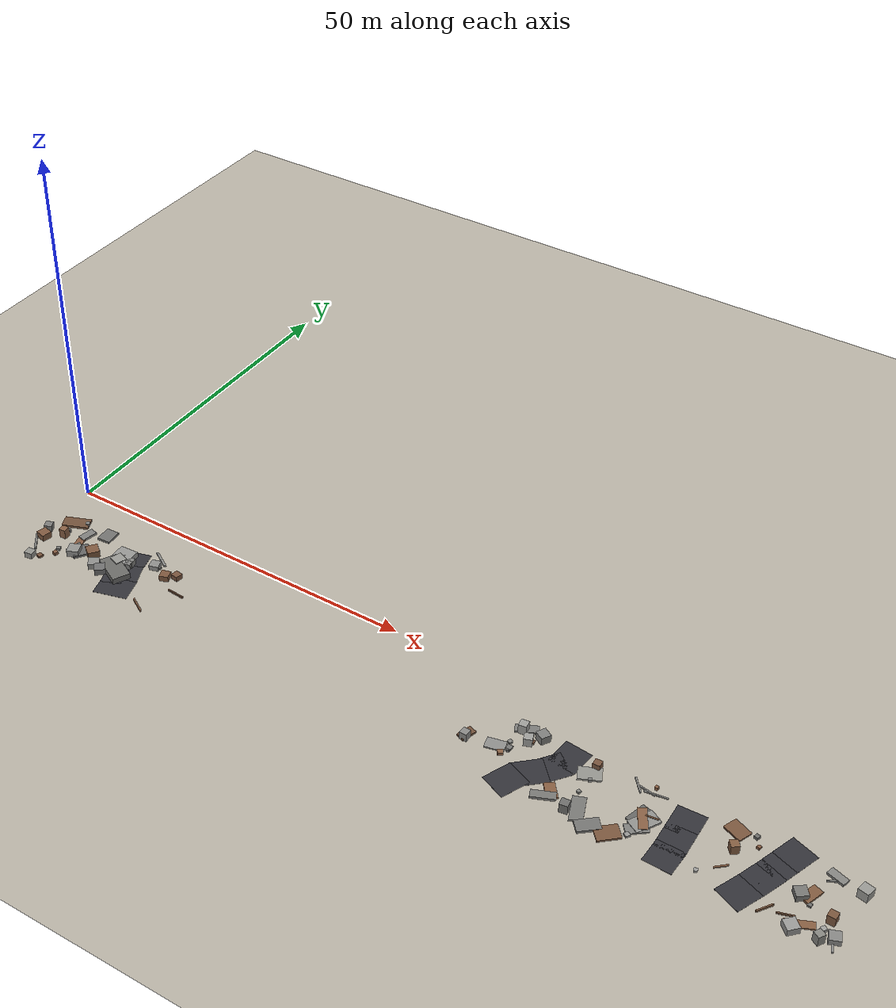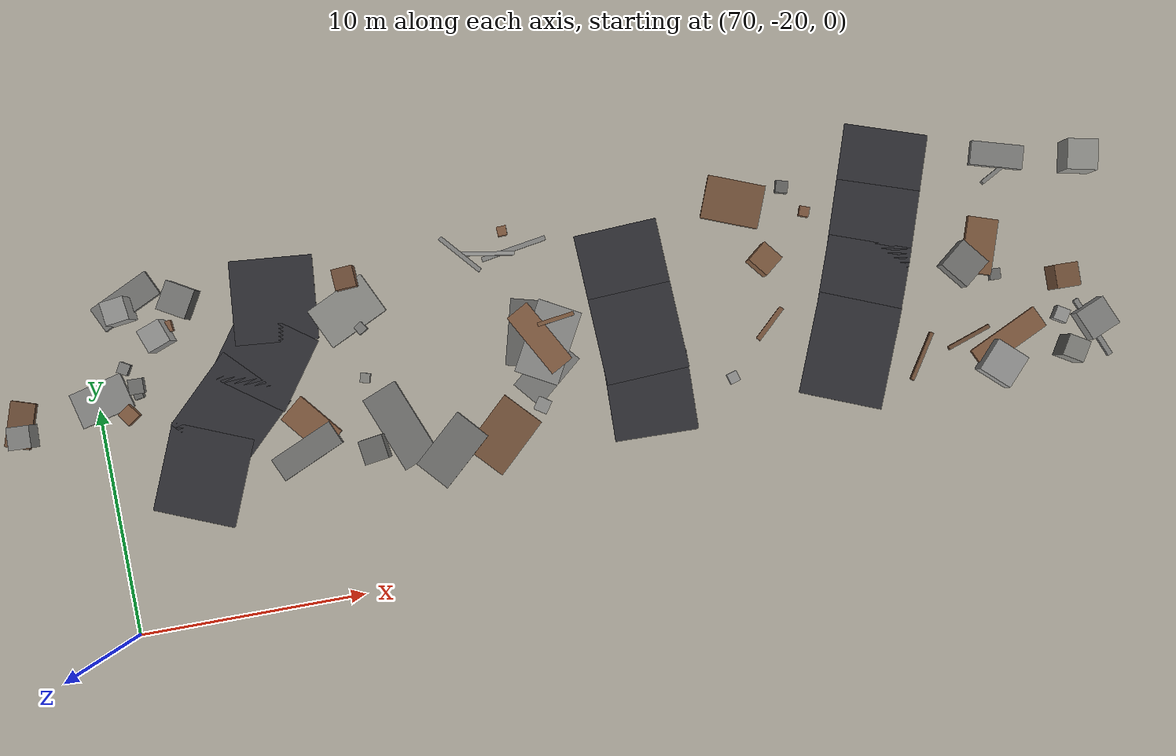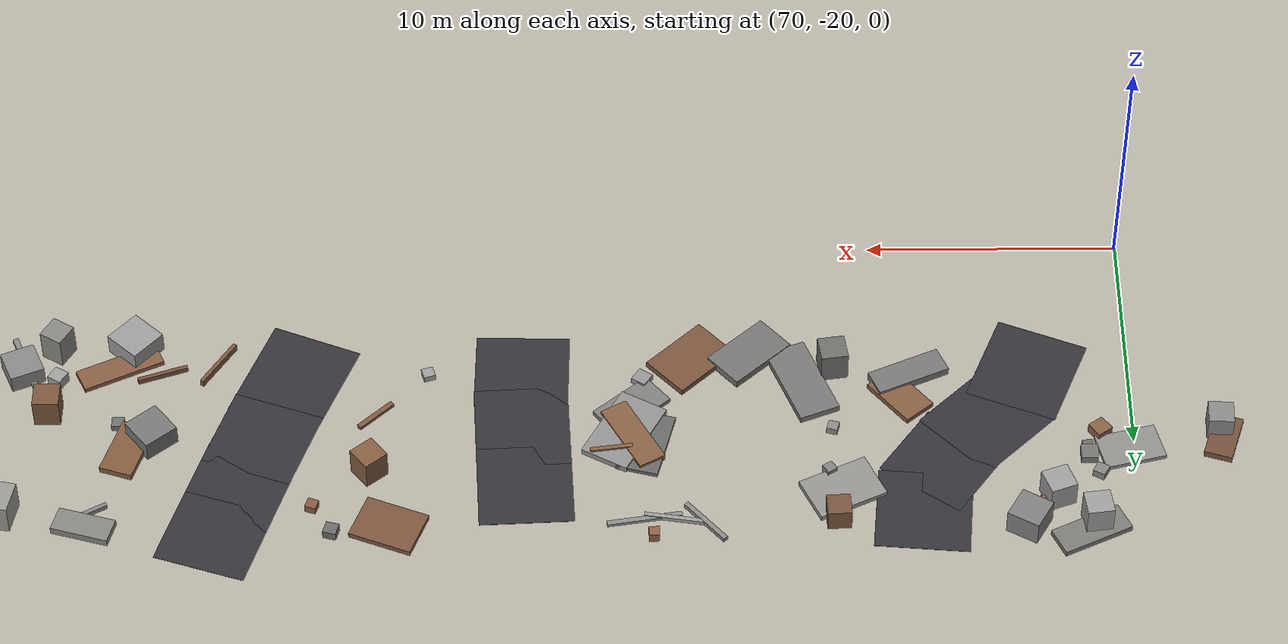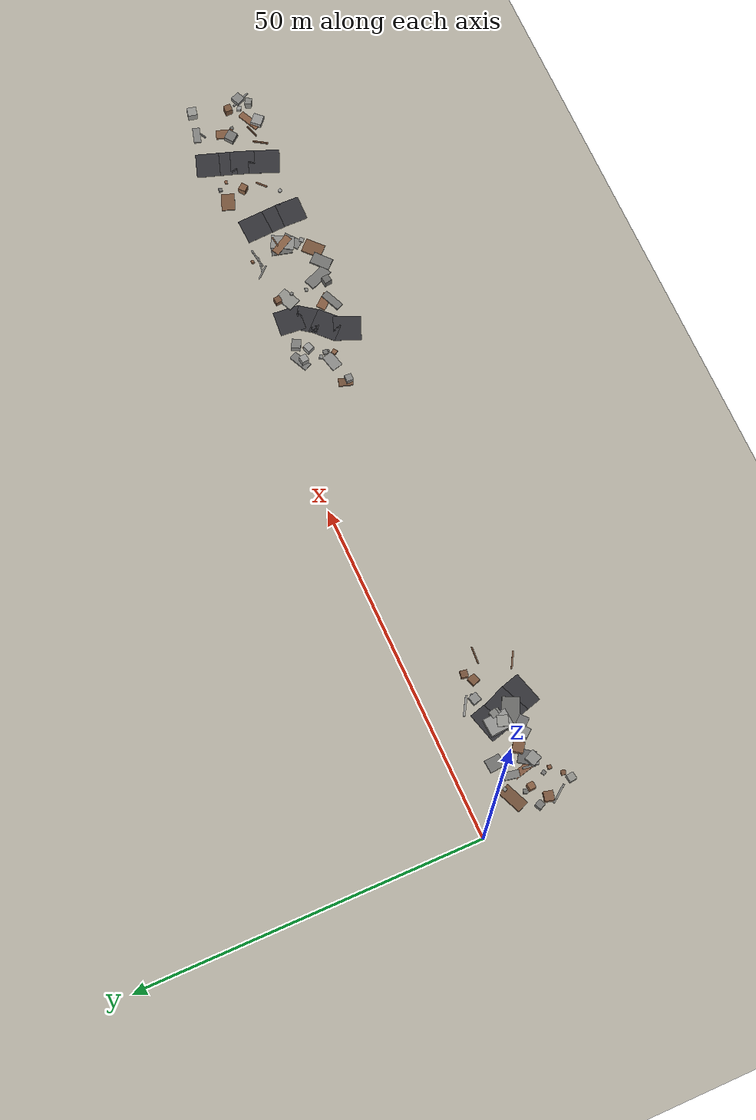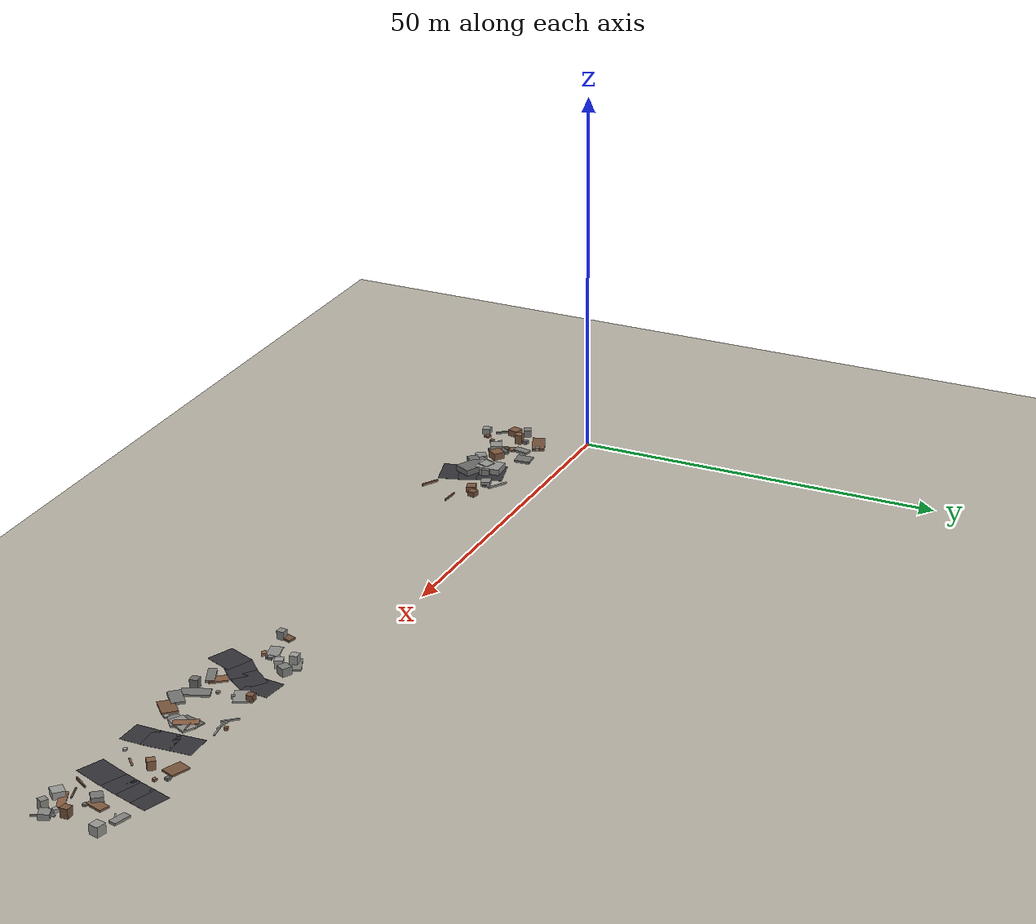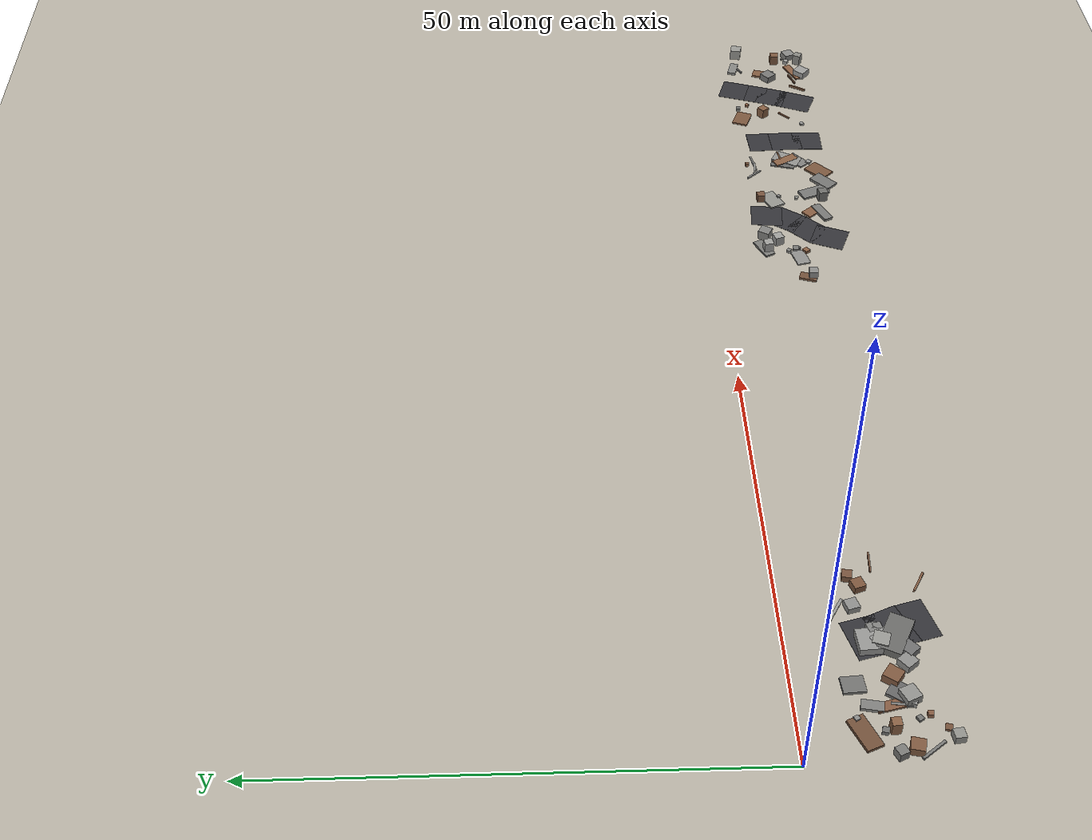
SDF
<sdf version="1.6">
 <world name="navitas_arena">
  <model name="ground_plane">
   <static>true</static>
   <link name="link">
    <collision name="collision">
     <geometry><plane><normal>0 0 1</normal><size>400 400</size></plane></geometry>
     <surface><friction><ode><mu>0.720</mu><mu2>0.720</mu2></ode></friction></surface>
    </collision>
    <visual name="visual">
     <cast_shadows>false</cast_shadows>
     <geometry><plane><normal>0 0 1</normal><size>400 400</size></plane></geometry>
     <material><ambient>0.720 0.700 0.650 1</ambient><diffuse>0.720 0.700 0.650 1</diffuse></material>
    </visual>
   </link>
  </model>
  <model name="road_orta_3_5">
   <static>true</static>
   <pose>15.771 -12.817 0.040 0 0 1.847</pose>
   <link name="link">
    <collision name="col"><geometry><box><size>3.313 4.600 0.020</size></box></geometry></collision>
    <visual name="vis">
     <geometry><box><size>3.313 4.600 0.020</size></box></geometry>
     <material><ambient>0.20 0.20 0.22 1</ambient><diffuse>0.20 0.20 0.22 1</diffuse></material>
    </visual>
   </link>
  </model>
  <model name="road_orta_3_6">
   <static>true</static>
   <pose>14.903 -10.426 0.040 0 0 1.984</pose>
   <link name="link">
    <collision name="col"><geometry><box><size>3.586 4.600 0.020</size></box></geometry></collision>
    <visual name="vis">
     <geometry><box><size>3.586 4.600 0.020</size></box></geometry>
     <material><ambient>0.20 0.20 0.22 1</ambient><diffuse>0.20 0.20 0.22 1</diffuse></material>
    </visual>
   </link>
  </model>
  <model name="road_orta_3_7">
   <static>true</static>
   <pose>14.009 -7.898 0.040 0 0 1.838</pose>
   <link name="link">
    <collision name="col"><geometry><box><size>3.591 4.600 0.020</size></box></geometry></collision>
    <visual name="vis">
     <geometry><box><size>3.591 4.600 0.020</size></box></geometry>
     <material><ambient>0.20 0.20 0.22 1</ambient><diffuse>0.20 0.20 0.22 1</diffuse></material>
    </visual>
   </link>
  </model>
  <model name="blk_orta_3_0_0">
   <static>true</static>
   <pose>14.739 -8.925 0.425 0 0 0.232</pose>
   <link name="link">
    <collision name="col"><geometry><box><size>0.803 0.803 0.850</size></box></geometry></collision>
    <visual name="vis">
     <geometry><box><size>0.803 0.803 0.850</size></box></geometry>
     <material><ambient>0.51 0.51 0.50 1</ambient><diffuse>0.51 0.51 0.50 1</diffuse></material>
    </visual>
   </link>
  </model>
  <model name="blk_orta_3_0_1">
   <static>true</static>
   <pose>13.169 -8.827 0.425 0 0 2.100</pose>
   <link name="link">
    <collision name="col"><geometry><box><size>1.323 1.323 0.850</size></box></geometry></collision>
    <visual name="vis">
     <geometry><box><size>1.323 1.323 0.850</size></box></geometry>
     <material><ambient>0.58 0.58 0.57 1</ambient><diffuse>0.58 0.58 0.57 1</diffuse></material>
    </visual>
   </link>
  </model>
  <model name="blk_orta_3_0_2">
   <static>true</static>
   <pose>13.228 -9.056 0.481 0 0 2.811</pose>
   <link name="link">
    <collision name="col"><geometry><box><size>1.550 1.550 0.962</size></box></geometry></collision>
    <visual name="vis">
     <geometry><box><size>1.550 1.550 0.962</size></box></geometry>
     <material><ambient>0.60 0.60 0.58 1</ambient><diffuse>0.60 0.60 0.58 1</diffuse></material>
    </visual>
   </link>
  </model>
  <model name="blk_orta_3_0_3">
   <static>true</static>
   <pose>13.814 -10.502 0.425 0 0 2.675</pose>
   <link name="link">
    <collision name="col"><geometry><box><size>4.433 2.405 0.850</size></box></geometry></collision>
    <visual name="vis">
     <geometry><box><size>4.433 2.405 0.850</size></box></geometry>
     <material><ambient>0.42 0.42 0.41 1</ambient><diffuse>0.42 0.42 0.41 1</diffuse></material>
    </visual>
   </link>
  </model>
  <model name="blk_orta_3_0_4">
   <static>true</static>
   <pose>12.180 -11.518 0.425 0 0 0.722</pose>
   <link name="link">
    <collision name="col"><geometry><box><size>1.402 1.402 0.850</size></box></geometry></collision>
    <visual name="vis">
     <geometry><box><size>1.402 1.402 0.850</size></box></geometry>
     <material><ambient>0.44 0.44 0.44 1</ambient><diffuse>0.44 0.44 0.44 1</diffuse></material>
    </visual>
   </link>
  </model>
  <model name="blk_orta_3_0_5">
   <static>true</static>
   <pose>13.265 -8.466 0.425 0 0 1.635</pose>
   <link name="link">
    <collision name="col"><geometry><box><size>3.387 2.523 0.850</size></box></geometry></collision>
    <visual name="vis">
     <geometry><box><size>3.387 2.523 0.850</size></box></geometry>
     <material><ambient>0.59 0.59 0.58 1</ambient><diffuse>0.59 0.59 0.58 1</diffuse></material>
    </visual>
   </link>
  </model>
  <model name="blk_orta_3_0_6">
   <static>true</static>
   <pose>14.635 -8.473 0.425 0 0 1.817</pose>
   <link name="link">
    <collision name="col"><geometry><box><size>1.039 1.039 0.850</size></box></geometry></collision>
    <visual name="vis">
     <geometry><box><size>1.039 1.039 0.850</size></box></geometry>
     <material><ambient>0.51 0.51 0.50 1</ambient><diffuse>0.51 0.51 0.50 1</diffuse></material>
    </visual>
   </link>
  </model>
  <model name="deb_orta_6">
   <static>true</static>
   <pose>18.170 -6.913 0.149 0 0 1.450</pose>
   <link name="link">
    <collision name="col"><geometry><box><size>0.472 0.472 0.297</size></box></geometry></collision>
    <visual name="vis">
     <geometry><box><size>0.472 0.472 0.297</size></box></geometry>
     <material><ambient>0.42 0.42 0.41 1</ambient><diffuse>0.42 0.42 0.41 1</diffuse></material>
    </visual>
   </link>
  </model>
  <model name="deb_orta_23">
   <static>true</static>
   <pose>0.960 -8.730 0.465 0 0 1.999</pose>
   <link name="link">
    <collision name="col"><geometry><box><size>1.009 1.009 0.929</size></box></geometry></collision>
    <visual name="vis">
     <geometry><box><size>1.009 1.009 0.929</size></box></geometry>
     <material><ambient>0.48 0.48 0.47 1</ambient><diffuse>0.48 0.48 0.47 1</diffuse></material>
    </visual>
   </link>
  </model>
  <model name="deb_orta_24">
   <static>true</static>
   <pose>2.624 -14.141 0.422 0 0 0.135</pose>
   <link name="link">
    <collision name="col"><geometry><box><size>1.059 1.059 0.844</size></box></geometry></collision>
    <visual name="vis">
     <geometry><box><size>1.059 1.059 0.844</size></box></geometry>
     <material><ambient>0.57 0.57 0.55 1</ambient><diffuse>0.57 0.57 0.55 1</diffuse></material>
    </visual>
   </link>
  </model>
  <model name="deb_orta_35">
   <static>true</static>
   <pose>6.282 -9.060 0.113 0 0 1.809</pose>
   <link name="link">
    <collision name="col"><geometry><box><size>3.375 1.028 0.225</size></box></geometry></collision>
    <visual name="vis">
     <geometry><box><size>3.375 1.028 0.225</size></box></geometry>
     <material><ambient>0.52 0.36 0.26 1</ambient><diffuse>0.52 0.36 0.26 1</diffuse></material>
    </visual>
   </link>
  </model>
  <model name="deb_orta_36">
   <static>true</static>
   <pose>21.249 -7.147 0.359 0 0 2.966</pose>
   <link name="link">
    <collision name="col"><geometry><box><size>1.003 1.003 0.719</size></box></geometry></collision>
    <visual name="vis">
     <geometry><box><size>1.003 1.003 0.719</size></box></geometry>
     <material><ambient>0.47 0.33 0.24 1</ambient><diffuse>0.47 0.33 0.24 1</diffuse></material>
    </visual>
   </link>
  </model>
  <model name="deb_orta_43">
   <static>true</static>
   <pose>1.380 -11.741 0.130 0 0 2.217</pose>
   <link name="link">
    <collision name="col"><geometry><box><size>2.889 0.265 0.259</size></box></geometry></collision>
    <visual name="vis">
     <geometry><box><size>2.889 0.265 0.259</size></box></geometry>
     <material><ambient>0.47 0.47 0.46 1</ambient><diffuse>0.47 0.47 0.46 1</diffuse></material>
    </visual>
   </link>
  </model>
  <model name="deb_orta_59">
   <static>true</static>
   <pose>4.751 -11.135 0.138 0 0 2.075</pose>
   <link name="link">
    <collision name="col"><geometry><box><size>0.561 0.561 0.275</size></box></geometry></collision>
    <visual name="vis">
     <geometry><box><size>0.561 0.561 0.275</size></box></geometry>
     <material><ambient>0.45 0.45 0.44 1</ambient><diffuse>0.45 0.45 0.44 1</diffuse></material>
    </visual>
   </link>
  </model>
  <model name="deb_orta_66">
   <static>true</static>
   <pose>17.281 -5.474 0.104 0 0 2.602</pose>
   <link name="link">
    <collision name="col"><geometry><box><size>2.901 0.280 0.208</size></box></geometry></collision>
    <visual name="vis">
     <geometry><box><size>2.901 0.280 0.208</size></box></geometry>
     <material><ambient>0.59 0.59 0.58 1</ambient><diffuse>0.59 0.59 0.58 1</diffuse></material>
    </visual>
   </link>
  </model>
  <model name="deb_orta_72">
   <static>true</static>
   <pose>8.525 -5.704 0.152 0 0 1.643</pose>
   <link name="link">
    <collision name="col"><geometry><box><size>2.190 1.821 0.304</size></box></geometry></collision>
    <visual name="vis">
     <geometry><box><size>2.190 1.821 0.304</size></box></geometry>
     <material><ambient>0.45 0.45 0.44 1</ambient><diffuse>0.45 0.45 0.44 1</diffuse></material>
    </visual>
   </link>
  </model>
  <model name="deb_orta_77">
   <static>true</static>
   <pose>6.411 -10.844 0.247 0 0 2.704</pose>
   <link name="link">
    <collision name="col"><geometry><box><size>0.698 0.698 0.494</size></box></geometry></collision>
    <visual name="vis">
     <geometry><box><size>0.698 0.698 0.494</size></box></geometry>
     <material><ambient>0.55 0.55 0.54 1</ambient><diffuse>0.55 0.55 0.54 1</diffuse></material>
    </visual>
   </link>
  </model>
  <model name="deb_orta_83">
   <static>true</static>
   <pose>1.538 -10.279 0.446 0 0 1.335</pose>
   <link name="link">
    <collision name="col"><geometry><box><size>1.345 1.345 0.891</size></box></geometry></collision>
    <visual name="vis">
     <geometry><box><size>1.345 1.345 0.891</size></box></geometry>
     <material><ambient>0.50 0.35 0.25 1</ambient><diffuse>0.50 0.35 0.25 1</diffuse></material>
    </visual>
   </link>
  </model>
  <model name="deb_orta_85">
   <static>true</static>
   <pose>7.008 -10.601 0.476 0 0 0.416</pose>
   <link name="link">
    <collision name="col"><geometry><box><size>1.577 1.577 0.951</size></box></geometry></collision>
    <visual name="vis">
     <geometry><box><size>1.577 1.577 0.951</size></box></geometry>
     <material><ambient>0.57 0.57 0.56 1</ambient><diffuse>0.57 0.57 0.56 1</diffuse></material>
    </visual>
   </link>
  </model>
  <model name="deb_orta_104">
   <static>true</static>
   <pose>3.445 -7.801 0.219 0 0 2.857</pose>
   <link name="link">
    <collision name="col"><geometry><box><size>0.637 0.637 0.437</size></box></geometry></collision>
    <visual name="vis">
     <geometry><box><size>0.637 0.637 0.437</size></box></geometry>
     <material><ambient>0.44 0.44 0.43 1</ambient><diffuse>0.44 0.44 0.43 1</diffuse></material>
    </visual>
   </link>
  </model>
  <model name="deb_orta_108">
   <static>true</static>
   <pose>7.554 -9.987 0.165 0 0 0.963</pose>
   <link name="link">
    <collision name="col"><geometry><box><size>2.388 1.952 0.330</size></box></geometry></collision>
    <visual name="vis">
     <geometry><box><size>2.388 1.952 0.330</size></box></geometry>
     <material><ambient>0.40 0.40 0.40 1</ambient><diffuse>0.40 0.40 0.40 1</diffuse></material>
    </visual>
   </link>
  </model>
  <model name="deb_orta_123">
   <static>true</static>
   <pose>9.195 -9.461 0.482 0 0 0.933</pose>
   <link name="link">
    <collision name="col"><geometry><box><size>1.574 1.574 0.963</size></box></geometry></collision>
    <visual name="vis">
     <geometry><box><size>1.574 1.574 0.963</size></box></geometry>
     <material><ambient>0.50 0.35 0.25 1</ambient><diffuse>0.50 0.35 0.25 1</diffuse></material>
    </visual>
   </link>
  </model>
  <model name="deb_orta_124">
   <static>true</static>
   <pose>6.262 -9.767 0.125 0 0 1.434</pose>
   <link name="link">
    <collision name="col"><geometry><box><size>1.982 0.294 0.250</size></box></geometry></collision>
    <visual name="vis">
     <geometry><box><size>1.982 0.294 0.250</size></box></geometry>
     <material><ambient>0.47 0.47 0.46 1</ambient><diffuse>0.47 0.47 0.46 1</diffuse></material>
    </visual>
   </link>
  </model>
  <model name="deb_orta_139">
   <static>true</static>
   <pose>5.108 -12.125 0.236 0 0 1.456</pose>
   <link name="link">
    <collision name="col"><geometry><box><size>0.534 0.534 0.473</size></box></geometry></collision>
    <visual name="vis">
     <geometry><box><size>0.534 0.534 0.473</size></box></geometry>
     <material><ambient>0.52 0.36 0.26 1</ambient><diffuse>0.52 0.36 0.26 1</diffuse></material>
    </visual>
   </link>
  </model>
  <model name="deb_orta_143">
   <static>true</static>
   <pose>3.706 -13.511 0.133 0 0 1.309</pose>
   <link name="link">
    <collision name="col"><geometry><box><size>0.666 0.666 0.266</size></box></geometry></collision>
    <visual name="vis">
     <geometry><box><size>0.666 0.666 0.266</size></box></geometry>
     <material><ambient>0.46 0.32 0.23 1</ambient><diffuse>0.46 0.32 0.23 1</diffuse></material>
    </visual>
   </link>
  </model>
  <model name="deb_orta_144">
   <static>true</static>
   <pose>20.444 -13.974 0.154 0 0 2.618</pose>
   <link name="link">
    <collision name="col"><geometry><box><size>2.500 0.202 0.308</size></box></geometry></collision>
    <visual name="vis">
     <geometry><box><size>2.500 0.202 0.308</size></box></geometry>
     <material><ambient>0.51 0.36 0.26 1</ambient><diffuse>0.51 0.36 0.26 1</diffuse></material>
    </visual>
   </link>
  </model>
  <model name="deb_orta_145">
   <static>true</static>
   <pose>4.747 -5.423 0.242 0 0 0.465</pose>
   <link name="link">
    <collision name="col"><geometry><box><size>0.497 0.497 0.484</size></box></geometry></collision>
    <visual name="vis">
     <geometry><box><size>0.497 0.497 0.484</size></box></geometry>
     <material><ambient>0.54 0.54 0.53 1</ambient><diffuse>0.54 0.54 0.53 1</diffuse></material>
    </visual>
   </link>
  </model>
  <model name="deb_orta_146">
   <static>true</static>
   <pose>23.114 -9.659 0.129 0 0 3.073</pose>
   <link name="link">
    <collision name="col"><geometry><box><size>2.448 0.166 0.258</size></box></geometry></collision>
    <visual name="vis">
     <geometry><box><size>2.448 0.166 0.258</size></box></geometry>
     <material><ambient>0.46 0.32 0.23 1</ambient><diffuse>0.46 0.32 0.23 1</diffuse></material>
    </visual>
   </link>
  </model>
  <model name="deb_orta_148">
   <static>true</static>
   <pose>17.585 -7.020 0.345 0 0 0.278</pose>
   <link name="link">
    <collision name="col"><geometry><box><size>1.260 1.260 0.690</size></box></geometry></collision>
    <visual name="vis">
     <geometry><box><size>1.260 1.260 0.690</size></box></geometry>
     <material><ambient>0.56 0.56 0.55 1</ambient><diffuse>0.56 0.56 0.55 1</diffuse></material>
    </visual>
   </link>
  </model>
  <model name="deb_orta_153">
   <static>true</static>
   <pose>10.774 -11.100 0.414 0 0 2.240</pose>
   <link name="link">
    <collision name="col"><geometry><box><size>1.427 1.427 0.827</size></box></geometry></collision>
    <visual name="vis">
     <geometry><box><size>1.427 1.427 0.827</size></box></geometry>
     <material><ambient>0.56 0.56 0.55 1</ambient><diffuse>0.56 0.56 0.55 1</diffuse></material>
    </visual>
   </link>
  </model>
  <model name="deb_orta_159">
   <static>true</static>
   <pose>20.011 -7.983 0.406 0 0 0.330</pose>
   <link name="link">
    <collision name="col"><geometry><box><size>1.208 1.208 0.812</size></box></geometry></collision>
    <visual name="vis">
     <geometry><box><size>1.208 1.208 0.812</size></box></geometry>
     <material><ambient>0.49 0.34 0.24 1</ambient><diffuse>0.49 0.34 0.24 1</diffuse></material>
    </visual>
   </link>
  </model>
  <model name="deb_orta_165">
   <static>true</static>
   <pose>6.168 -7.088 0.166 0 0 1.385</pose>
   <link name="link">
    <collision name="col"><geometry><box><size>2.136 1.067 0.332</size></box></geometry></collision>
    <visual name="vis">
     <geometry><box><size>2.136 1.067 0.332</size></box></geometry>
     <material><ambient>0.50 0.50 0.49 1</ambient><diffuse>0.50 0.50 0.49 1</diffuse></material>
    </visual>
   </link>
  </model>
  <model name="deb_orta_171">
   <static>true</static>
   <pose>3.642 -8.685 0.675 0 0 1.619</pose>
   <link name="link">
    <collision name="col"><geometry><box><size>0.928 0.928 1.350</size></box></geometry></collision>
    <visual name="vis">
     <geometry><box><size>0.928 0.928 1.350</size></box></geometry>
     <material><ambient>0.54 0.38 0.27 1</ambient><diffuse>0.54 0.38 0.27 1</diffuse></material>
    </visual>
   </link>
  </model>
  <model name="deb_orta_174">
   <static>true</static>
   <pose>3.268 -5.934 0.164 0 0 0.398</pose>
   <link name="link">
    <collision name="col"><geometry><box><size>3.595 1.741 0.328</size></box></geometry></collision>
    <visual name="vis">
     <geometry><box><size>3.595 1.741 0.328</size></box></geometry>
     <material><ambient>0.45 0.32 0.23 1</ambient><diffuse>0.45 0.32 0.23 1</diffuse></material>
    </visual>
   </link>
  </model>
  <model name="road_zor_1_8">
   <static>true</static>
   <pose>73.957 -13.587 0.040 0 0 1.180</pose>
   <link name="link">
    <collision name="col"><geometry><box><size>3.955 3.680 0.020</size></box></geometry></collision>
    <visual name="vis">
     <geometry><box><size>3.955 3.680 0.020</size></box></geometry>
     <material><ambient>0.20 0.20 0.22 1</ambient><diffuse>0.20 0.20 0.22 1</diffuse></material>
    </visual>
   </link>
  </model>
  <model name="road_zor_1_9">
   <static>true</static>
   <pose>75.623 -11.124 0.040 0 0 0.770</pose>
   <link name="link">
    <collision name="col"><geometry><box><size>3.921 3.680 0.020</size></box></geometry></collision>
    <visual name="vis">
     <geometry><box><size>3.921 3.680 0.020</size></box></geometry>
     <material><ambient>0.20 0.20 0.22 1</ambient><diffuse>0.20 0.20 0.22 1</diffuse></material>
    </visual>
   </link>
  </model>
  <model name="road_zor_1_10">
   <static>true</static>
   <pose>77.456 -9.036 0.040 0 0 0.946</pose>
   <link name="link">
    <collision name="col"><geometry><box><size>3.456 3.680 0.020</size></box></geometry></collision>
    <visual name="vis">
     <geometry><box><size>3.456 3.680 0.020</size></box></geometry>
     <material><ambient>0.20 0.20 0.22 1</ambient><diffuse>0.20 0.20 0.22 1</diffuse></material>
    </visual>
   </link>
  </model>
  <model name="road_zor_1_11">
   <static>true</static>
   <pose>78.331 -6.600 0.040 0 0 1.480</pose>
   <link name="link">
    <collision name="col"><geometry><box><size>3.712 3.680 0.020</size></box></geometry></collision>
    <visual name="vis">
     <geometry><box><size>3.712 3.680 0.020</size></box></geometry>
     <material><ambient>0.20 0.20 0.22 1</ambient><diffuse>0.20 0.20 0.22 1</diffuse></material>
    </visual>
   </link>
  </model>
  <model name="road_zor_2_3">
   <static>true</static>
   <pose>93.841 -13.690 0.040 0 0 1.548</pose>
   <link name="link">
    <collision name="col"><geometry><box><size>3.521 3.680 0.020</size></box></geometry></collision>
    <visual name="vis">
     <geometry><box><size>3.521 3.680 0.020</size></box></geometry>
     <material><ambient>0.20 0.20 0.22 1</ambient><diffuse>0.20 0.20 0.22 1</diffuse></material>
    </visual>
   </link>
  </model>
  <model name="road_zor_2_4">
   <static>true</static>
   <pose>93.805 -10.910 0.040 0 0 1.616</pose>
   <link name="link">
    <collision name="col"><geometry><box><size>3.843 3.680 0.020</size></box></geometry></collision>
    <visual name="vis">
     <geometry><box><size>3.843 3.680 0.020</size></box></geometry>
     <material><ambient>0.20 0.20 0.22 1</ambient><diffuse>0.20 0.20 0.22 1</diffuse></material>
    </visual>
   </link>
  </model>
  <model name="road_zor_2_5">
   <static>true</static>
   <pose>93.675 -8.020 0.040 0 0 1.615</pose>
   <link name="link">
    <collision name="col"><geometry><box><size>3.743 3.680 0.020</size></box></geometry></collision>
    <visual name="vis">
     <geometry><box><size>3.743 3.680 0.020</size></box></geometry>
     <material><ambient>0.20 0.20 0.22 1</ambient><diffuse>0.20 0.20 0.22 1</diffuse></material>
    </visual>
   </link>
  </model>
  <model name="road_zor_3_4">
   <static>true</static>
   <pose>102.794 -13.328 0.040 0 0 1.186</pose>
   <link name="link">
    <collision name="col"><geometry><box><size>4.507 3.680 0.020</size></box></geometry></collision>
    <visual name="vis">
     <geometry><box><size>4.507 3.680 0.020</size></box></geometry>
     <material><ambient>0.20 0.20 0.22 1</ambient><diffuse>0.20 0.20 0.22 1</diffuse></material>
    </visual>
   </link>
  </model>
  <model name="road_zor_3_5">
   <static>true</static>
   <pose>103.917 -10.426 0.040 0 0 1.223</pose>
   <link name="link">
    <collision name="col"><geometry><box><size>3.517 3.680 0.020</size></box></geometry></collision>
    <visual name="vis">
     <geometry><box><size>3.517 3.680 0.020</size></box></geometry>
     <material><ambient>0.20 0.20 0.22 1</ambient><diffuse>0.20 0.20 0.22 1</diffuse></material>
    </visual>
   </link>
  </model>
  <model name="road_zor_3_6">
   <static>true</static>
   <pose>104.760 -8.014 0.040 0 0 1.247</pose>
   <link name="link">
    <collision name="col"><geometry><box><size>3.392 3.680 0.020</size></box></geometry></collision>
    <visual name="vis">
     <geometry><box><size>3.392 3.680 0.020</size></box></geometry>
     <material><ambient>0.20 0.20 0.22 1</ambient><diffuse>0.20 0.20 0.22 1</diffuse></material>
    </visual>
   </link>
  </model>
  <model name="road_zor_3_7">
   <static>true</static>
   <pose>105.546 -5.667 0.040 0 0 1.249</pose>
   <link name="link">
    <collision name="col"><geometry><box><size>3.360 3.680 0.020</size></box></geometry></collision>
    <visual name="vis">
     <geometry><box><size>3.360 3.680 0.020</size></box></geometry>
     <material><ambient>0.20 0.20 0.22 1</ambient><diffuse>0.20 0.20 0.22 1</diffuse></material>
    </visual>
   </link>
  </model>
  <model name="deb_zor_2">
   <static>true</static>
   <pose>87.950 -6.293 0.089 0 0 2.979</pose>
   <link name="link">
    <collision name="col"><geometry><box><size>2.303 0.170 0.178</size></box></geometry></collision>
    <visual name="vis">
     <geometry><box><size>2.303 0.170 0.178</size></box></geometry>
     <material><ambient>0.62 0.62 0.61 1</ambient><diffuse>0.62 0.62 0.61 1</diffuse></material>
    </visual>
   </link>
  </model>
  <model name="deb_zor_3">
   <static>true</static>
   <pose>109.087 -15.047 0.446 0 0 0.826</pose>
   <link name="link">
    <collision name="col"><geometry><box><size>1.534 1.534 0.892</size></box></geometry></collision>
    <visual name="vis">
     <geometry><box><size>1.534 1.534 0.892</size></box></geometry>
     <material><ambient>0.61 0.61 0.60 1</ambient><diffuse>0.61 0.61 0.60 1</diffuse></material>
    </visual>
   </link>
  </model>
  <model name="deb_zor_4">
   <static>true</static>
   <pose>86.557 -14.688 0.132 0 0 0.207</pose>
   <link name="link">
    <collision name="col"><geometry><box><size>0.465 0.465 0.263</size></box></geometry></collision>
    <visual name="vis">
     <geometry><box><size>0.465 0.465 0.263</size></box></geometry>
     <material><ambient>0.59 0.59 0.58 1</ambient><diffuse>0.59 0.59 0.58 1</diffuse></material>
    </visual>
   </link>
  </model>
  <model name="deb_zor_9">
   <static>true</static>
   <pose>81.420 -7.658 0.113 0 0 0.439</pose>
   <link name="link">
    <collision name="col"><geometry><box><size>2.843 1.939 0.226</size></box></geometry></collision>
    <visual name="vis">
     <geometry><box><size>2.843 1.939 0.226</size></box></geometry>
     <material><ambient>0.58 0.58 0.56 1</ambient><diffuse>0.58 0.58 0.56 1</diffuse></material>
    </visual>
   </link>
  </model>
  <model name="deb_zor_12">
   <static>true</static>
   <pose>112.054 -13.413 0.242 0 0 2.588</pose>
   <link name="link">
    <collision name="col"><geometry><box><size>0.590 0.590 0.483</size></box></geometry></collision>
    <visual name="vis">
     <geometry><box><size>0.590 0.590 0.483</size></box></geometry>
     <material><ambient>0.62 0.62 0.61 1</ambient><diffuse>0.62 0.62 0.61 1</diffuse></material>
    </visual>
   </link>
  </model>
  <model name="deb_zor_18">
   <static>true</static>
   <pose>99.693 -8.753 0.606 0 0 2.246</pose>
   <link name="link">
    <collision name="col"><geometry><box><size>1.031 1.031 1.211</size></box></geometry></collision>
    <visual name="vis">
     <geometry><box><size>1.031 1.031 1.211</size></box></geometry>
     <material><ambient>0.52 0.37 0.26 1</ambient><diffuse>0.52 0.37 0.26 1</diffuse></material>
    </visual>
   </link>
  </model>
  <model name="deb_zor_21">
   <static>true</static>
   <pose>89.538 -11.849 0.099 0 0 0.695</pose>
   <link name="link">
    <collision name="col"><geometry><box><size>2.713 1.478 0.199</size></box></geometry></collision>
    <visual name="vis">
     <geometry><box><size>2.713 1.478 0.199</size></box></geometry>
     <material><ambient>0.50 0.50 0.49 1</ambient><diffuse>0.50 0.50 0.49 1</diffuse></material>
    </visual>
   </link>
  </model>
  <model name="deb_zor_34">
   <static>true</static>
   <pose>89.075 -6.284 0.067 0 0 0.155</pose>
   <link name="link">
    <collision name="col"><geometry><box><size>2.924 0.206 0.134</size></box></geometry></collision>
    <visual name="vis">
     <geometry><box><size>2.924 0.206 0.134</size></box></geometry>
     <material><ambient>0.55 0.55 0.54 1</ambient><diffuse>0.55 0.55 0.54 1</diffuse></material>
    </visual>
   </link>
  </model>
  <model name="deb_zor_37">
   <static>true</static>
   <pose>73.549 -6.933 0.138 0 0 0.109</pose>
   <link name="link">
    <collision name="col"><geometry><box><size>0.498 0.498 0.275</size></box></geometry></collision>
    <visual name="vis">
     <geometry><box><size>0.498 0.498 0.275</size></box></geometry>
     <material><ambient>0.53 0.37 0.27 1</ambient><diffuse>0.53 0.37 0.27 1</diffuse></material>
    </visual>
   </link>
  </model>
  <model name="deb_zor_44">
   <static>true</static>
   <pose>113.901 -6.779 0.645 0 0 1.357</pose>
   <link name="link">
    <collision name="col"><geometry><box><size>1.323 1.323 1.289</size></box></geometry></collision>
    <visual name="vis">
     <geometry><box><size>1.323 1.323 1.289</size></box></geometry>
     <material><ambient>0.60 0.60 0.58 1</ambient><diffuse>0.60 0.60 0.58 1</diffuse></material>
    </visual>
   </link>
  </model>
  <model name="deb_zor_55">
   <static>true</static>
   <pose>109.567 -11.165 0.134 0 0 3.113</pose>
   <link name="link">
    <collision name="col"><geometry><box><size>0.479 0.479 0.268</size></box></geometry></collision>
    <visual name="vis">
     <geometry><box><size>0.479 0.479 0.268</size></box></geometry>
     <material><ambient>0.44 0.44 0.43 1</ambient><diffuse>0.44 0.44 0.43 1</diffuse></material>
    </visual>
   </link>
  </model>
  <model name="deb_zor_56">
   <static>true</static>
   <pose>99.535 -11.531 0.071 0 0 0.751</pose>
   <link name="link">
    <collision name="col"><geometry><box><size>1.729 0.213 0.143</size></box></geometry></collision>
    <visual name="vis">
     <geometry><box><size>1.729 0.213 0.143</size></box></geometry>
     <material><ambient>0.50 0.35 0.25 1</ambient><diffuse>0.50 0.35 0.25 1</diffuse></material>
    </visual>
   </link>
  </model>
  <model name="deb_zor_59">
   <static>true</static>
   <pose>87.191 -14.225 0.132 0 0 0.752</pose>
   <link name="link">
    <collision name="col"><geometry><box><size>2.876 2.021 0.265</size></box></geometry></collision>
    <visual name="vis">
     <geometry><box><size>2.876 2.021 0.265</size></box></geometry>
     <material><ambient>0.48 0.34 0.24 1</ambient><diffuse>0.48 0.34 0.24 1</diffuse></material>
    </visual>
   </link>
  </model>
  <model name="deb_zor_72">
   <static>true</static>
   <pose>113.462 -13.847 0.382 0 0 1.968</pose>
   <link name="link">
    <collision name="col"><geometry><box><size>1.364 1.364 0.764</size></box></geometry></collision>
    <visual name="vis">
     <geometry><box><size>1.364 1.364 0.764</size></box></geometry>
     <material><ambient>0.53 0.53 0.52 1</ambient><diffuse>0.53 0.53 0.52 1</diffuse></material>
    </visual>
   </link>
  </model>
  <model name="deb_zor_74">
   <static>true</static>
   <pose>71.745 -5.937 0.678 0 0 0.126</pose>
   <link name="link">
    <collision name="col"><geometry><box><size>1.037 1.037 1.357</size></box></geometry></collision>
    <visual name="vis">
     <geometry><box><size>1.037 1.037 1.357</size></box></geometry>
     <material><ambient>0.62 0.62 0.61 1</ambient><diffuse>0.62 0.62 0.61 1</diffuse></material>
    </visual>
   </link>
  </model>
  <model name="deb_zor_76">
   <static>true</static>
   <pose>82.828 -13.009 0.141 0 0 1.947</pose>
   <link name="link">
    <collision name="col"><geometry><box><size>3.573 1.640 0.281</size></box></geometry></collision>
    <visual name="vis">
     <geometry><box><size>3.573 1.640 0.281</size></box></geometry>
     <material><ambient>0.47 0.47 0.46 1</ambient><diffuse>0.47 0.47 0.46 1</diffuse></material>
    </visual>
   </link>
  </model>
  <model name="deb_zor_78">
   <static>true</static>
   <pose>101.855 -6.981 0.166 0 0 2.798</pose>
   <link name="link">
    <collision name="col"><geometry><box><size>0.433 0.433 0.332</size></box></geometry></collision>
    <visual name="vis">
     <geometry><box><size>0.433 0.433 0.332</size></box></geometry>
     <material><ambient>0.52 0.36 0.26 1</ambient><diffuse>0.52 0.36 0.26 1</diffuse></material>
    </visual>
   </link>
  </model>
  <model name="deb_zor_85">
   <static>true</static>
   <pose>79.010 -12.294 0.115 0 0 2.260</pose>
   <link name="link">
    <collision name="col"><geometry><box><size>2.357 1.338 0.230</size></box></geometry></collision>
    <visual name="vis">
     <geometry><box><size>2.357 1.338 0.230</size></box></geometry>
     <material><ambient>0.53 0.37 0.26 1</ambient><diffuse>0.53 0.37 0.26 1</diffuse></material>
    </visual>
   </link>
  </model>
  <model name="deb_zor_89">
   <static>true</static>
   <pose>71.975 -5.512 0.119 0 0 0.440</pose>
   <link name="link">
    <collision name="col"><geometry><box><size>2.900 1.195 0.239</size></box></geometry></collision>
    <visual name="vis">
     <geometry><box><size>2.900 1.195 0.239</size></box></geometry>
     <material><ambient>0.48 0.48 0.47 1</ambient><diffuse>0.48 0.48 0.47 1</diffuse></material>
    </visual>
   </link>
  </model>
  <model name="deb_zor_92">
   <static>true</static>
   <pose>81.633 -6.268 0.461 0 0 0.060</pose>
   <link name="link">
    <collision name="col"><geometry><box><size>0.929 0.929 0.922</size></box></geometry></collision>
    <visual name="vis">
     <geometry><box><size>0.929 0.929 0.922</size></box></geometry>
     <material><ambient>0.47 0.33 0.24 1</ambient><diffuse>0.47 0.33 0.24 1</diffuse></material>
    </visual>
   </link>
  </model>
  <model name="deb_zor_93">
   <static>true</static>
   <pose>86.730 -6.104 0.095 0 0 2.286</pose>
   <link name="link">
    <collision name="col"><geometry><box><size>2.266 0.199 0.191</size></box></geometry></collision>
    <visual name="vis">
     <geometry><box><size>2.266 0.199 0.191</size></box></geometry>
     <material><ambient>0.55 0.55 0.54 1</ambient><diffuse>0.55 0.55 0.54 1</diffuse></material>
    </visual>
   </link>
  </model>
  <model name="deb_zor_100">
   <static>true</static>
   <pose>74.342 -5.893 0.535 0 0 2.620</pose>
   <link name="link">
    <collision name="col"><geometry><box><size>1.323 1.323 1.070</size></box></geometry></collision>
    <visual name="vis">
     <geometry><box><size>1.323 1.323 1.070</size></box></geometry>
     <material><ambient>0.50 0.50 0.49 1</ambient><diffuse>0.50 0.50 0.49 1</diffuse></material>
    </visual>
   </link>
  </model>
  <model name="deb_zor_102">
   <static>true</static>
   <pose>107.969 -13.676 0.114 0 0 0.326</pose>
   <link name="link">
    <collision name="col"><geometry><box><size>2.011 0.163 0.228</size></box></geometry></collision>
    <visual name="vis">
     <geometry><box><size>2.011 0.163 0.228</size></box></geometry>
     <material><ambient>0.45 0.32 0.23 1</ambient><diffuse>0.45 0.32 0.23 1</diffuse></material>
    </visual>
   </link>
  </model>
  <model name="deb_zor_103">
   <static>true</static>
   <pose>66.515 -10.013 0.141 0 0 1.257</pose>
   <link name="link">
    <collision name="col"><geometry><box><size>2.028 1.115 0.282</size></box></geometry></collision>
    <visual name="vis">
     <geometry><box><size>2.028 1.115 0.282</size></box></geometry>
     <material><ambient>0.45 0.32 0.23 1</ambient><diffuse>0.45 0.32 0.23 1</diffuse></material>
    </visual>
   </link>
  </model>
  <model name="deb_zor_107">
   <static>true</static>
   <pose>81.695 -10.683 0.147 0 0 1.283</pose>
   <link name="link">
    <collision name="col"><geometry><box><size>0.427 0.427 0.295</size></box></geometry></collision>
    <visual name="vis">
     <geometry><box><size>0.427 0.427 0.295</size></box></geometry>
     <material><ambient>0.54 0.54 0.52 1</ambient><diffuse>0.54 0.54 0.52 1</diffuse></material>
    </visual>
   </link>
  </model>
  <model name="deb_zor_114">
   <static>true</static>
   <pose>109.674 -14.038 0.100 0 0 0.437</pose>
   <link name="link">
    <collision name="col"><geometry><box><size>3.331 1.007 0.201</size></box></geometry></collision>
    <visual name="vis">
     <geometry><box><size>3.331 1.007 0.201</size></box></geometry>
     <material><ambient>0.53 0.37 0.26 1</ambient><diffuse>0.53 0.37 0.26 1</diffuse></material>
    </visual>
   </link>
  </model>
  <model name="deb_zor_115">
   <static>true</static>
   <pose>81.897 -8.519 0.200 0 0 0.577</pose>
   <link name="link">
    <collision name="col"><geometry><box><size>0.420 0.420 0.400</size></box></geometry></collision>
    <visual name="vis">
     <geometry><box><size>0.420 0.420 0.400</size></box></geometry>
     <material><ambient>0.51 0.51 0.50 1</ambient><diffuse>0.51 0.51 0.50 1</diffuse></material>
    </visual>
   </link>
  </model>
  <model name="deb_zor_116">
   <static>true</static>
   <pose>81.620 -13.806 0.645 0 0 0.140</pose>
   <link name="link">
    <collision name="col"><geometry><box><size>1.062 1.062 1.290</size></box></geometry></collision>
    <visual name="vis">
     <geometry><box><size>1.062 1.062 1.290</size></box></geometry>
     <material><ambient>0.43 0.43 0.42 1</ambient><diffuse>0.43 0.43 0.42 1</diffuse></material>
    </visual>
   </link>
  </model>
  <model name="deb_zor_117">
   <static>true</static>
   <pose>66.640 -10.557 0.542 0 0 3.097</pose>
   <link name="link">
    <collision name="col"><geometry><box><size>0.991 0.991 1.084</size></box></geometry></collision>
    <visual name="vis">
     <geometry><box><size>0.991 0.991 1.084</size></box></geometry>
     <material><ambient>0.54 0.54 0.53 1</ambient><diffuse>0.54 0.54 0.53 1</diffuse></material>
    </visual>
   </link>
  </model>
  <model name="deb_zor_119">
   <static>true</static>
   <pose>73.152 -7.280 0.567 0 0 1.922</pose>
   <link name="link">
    <collision name="col"><geometry><box><size>1.075 1.075 1.135</size></box></geometry></collision>
    <visual name="vis">
     <geometry><box><size>1.075 1.075 1.135</size></box></geometry>
     <material><ambient>0.62 0.62 0.61 1</ambient><diffuse>0.62 0.62 0.61 1</diffuse></material>
    </visual>
   </link>
  </model>
  <model name="deb_zor_120">
   <static>true</static>
   <pose>98.877 -6.004 0.115 0 0 2.766</pose>
   <link name="link">
    <collision name="col"><geometry><box><size>2.551 1.905 0.229</size></box></geometry></collision>
    <visual name="vis">
     <geometry><box><size>2.551 1.905 0.229</size></box></geometry>
     <material><ambient>0.48 0.34 0.24 1</ambient><diffuse>0.48 0.34 0.24 1</diffuse></material>
    </visual>
   </link>
  </model>
  <model name="deb_zor_130">
   <static>true</static>
   <pose>71.798 -9.250 0.174 0 0 3.122</pose>
   <link name="link">
    <collision name="col"><geometry><box><size>0.660 0.660 0.349</size></box></geometry></collision>
    <visual name="vis">
     <geometry><box><size>0.660 0.660 0.349</size></box></geometry>
     <material><ambient>0.46 0.46 0.45 1</ambient><diffuse>0.46 0.46 0.45 1</diffuse></material>
    </visual>
   </link>
  </model>
  <model name="deb_zor_133">
   <static>true</static>
   <pose>89.835 -10.581 0.124 0 0 1.068</pose>
   <link name="link">
    <collision name="col"><geometry><box><size>3.331 1.983 0.247</size></box></geometry></collision>
    <visual name="vis">
     <geometry><box><size>3.331 1.983 0.247</size></box></geometry>
     <material><ambient>0.57 0.57 0.56 1</ambient><diffuse>0.57 0.57 0.56 1</diffuse></material>
    </visual>
   </link>
  </model>
  <model name="deb_zor_135">
   <static>true</static>
   <pose>112.318 -11.782 0.632 0 0 1.551</pose>
   <link name="link">
    <collision name="col"><geometry><box><size>1.029 1.029 1.264</size></box></geometry></collision>
    <visual name="vis">
     <geometry><box><size>1.029 1.029 1.264</size></box></geometry>
     <material><ambient>0.48 0.34 0.24 1</ambient><diffuse>0.48 0.34 0.24 1</diffuse></material>
    </visual>
   </link>
  </model>
  <model name="deb_zor_136">
   <static>true</static>
   <pose>88.717 -5.451 0.208 0 0 0.027</pose>
   <link name="link">
    <collision name="col"><geometry><box><size>0.413 0.413 0.416</size></box></geometry></collision>
    <visual name="vis">
     <geometry><box><size>0.413 0.413 0.416</size></box></geometry>
     <material><ambient>0.54 0.38 0.27 1</ambient><diffuse>0.54 0.38 0.27 1</diffuse></material>
    </visual>
   </link>
  </model>
  <model name="deb_zor_139">
   <static>true</static>
   <pose>90.339 -9.648 0.166 0 0 0.132</pose>
   <link name="link">
    <collision name="col"><geometry><box><size>1.652 0.177 0.332</size></box></geometry></collision>
    <visual name="vis">
     <geometry><box><size>1.652 0.177 0.332</size></box></geometry>
     <material><ambient>0.52 0.37 0.26 1</ambient><diffuse>0.52 0.37 0.26 1</diffuse></material>
    </visual>
   </link>
  </model>
  <model name="deb_zor_142">
   <static>true</static>
   <pose>71.298 -10.432 0.205 0 0 2.189</pose>
   <link name="link">
    <collision name="col"><geometry><box><size>0.665 0.665 0.410</size></box></geometry></collision>
    <visual name="vis">
     <geometry><box><size>0.665 0.665 0.410</size></box></geometry>
     <material><ambient>0.54 0.38 0.27 1</ambient><diffuse>0.54 0.38 0.27 1</diffuse></material>
    </visual>
   </link>
  </model>
  <model name="deb_zor_147">
   <static>true</static>
   <pose>71.839 -9.612 0.171 0 0 0.183</pose>
   <link name="link">
    <collision name="col"><geometry><box><size>0.401 0.401 0.342</size></box></geometry></collision>
    <visual name="vis">
     <geometry><box><size>0.401 0.401 0.342</size></box></geometry>
     <material><ambient>0.42 0.42 0.41 1</ambient><diffuse>0.42 0.42 0.41 1</diffuse></material>
    </visual>
   </link>
  </model>
  <model name="deb_zor_158">
   <static>true</static>
   <pose>113.382 -14.212 0.090 0 0 1.955</pose>
   <link name="link">
    <collision name="col"><geometry><box><size>2.837 0.220 0.181</size></box></geometry></collision>
    <visual name="vis">
     <geometry><box><size>2.837 0.220 0.181</size></box></geometry>
     <material><ambient>0.53 0.53 0.52 1</ambient><diffuse>0.53 0.53 0.52 1</diffuse></material>
    </visual>
   </link>
  </model>
  <model name="deb_zor_164">
   <static>true</static>
   <pose>110.568 -6.066 0.157 0 0 2.859</pose>
   <link name="link">
    <collision name="col"><geometry><box><size>2.297 1.037 0.315</size></box></geometry></collision>
    <visual name="vis">
     <geometry><box><size>2.297 1.037 0.315</size></box></geometry>
     <material><ambient>0.52 0.52 0.51 1</ambient><diffuse>0.52 0.52 0.51 1</diffuse></material>
    </visual>
   </link>
  </model>
  <model name="deb_zor_169">
   <static>true</static>
   <pose>97.522 -13.556 0.136 0 0 0.293</pose>
   <link name="link">
    <collision name="col"><geometry><box><size>0.462 0.462 0.272</size></box></geometry></collision>
    <visual name="vis">
     <geometry><box><size>0.462 0.462 0.272</size></box></geometry>
     <material><ambient>0.61 0.61 0.60 1</ambient><diffuse>0.61 0.61 0.60 1</diffuse></material>
    </visual>
   </link>
  </model>
  <model name="deb_zor_171">
   <static>true</static>
   <pose>101.073 -5.746 0.183 0 0 1.301</pose>
   <link name="link">
    <collision name="col"><geometry><box><size>0.525 0.525 0.366</size></box></geometry></collision>
    <visual name="vis">
     <geometry><box><size>0.525 0.525 0.366</size></box></geometry>
     <material><ambient>0.42 0.42 0.41 1</ambient><diffuse>0.42 0.42 0.41 1</diffuse></material>
    </visual>
   </link>
  </model>
  <model name="deb_zor_179">
   <static>true</static>
   <pose>105.793 -14.124 0.149 0 0 0.996</pose>
   <link name="link">
    <collision name="col"><geometry><box><size>2.230 0.161 0.298</size></box></geometry></collision>
    <visual name="vis">
     <geometry><box><size>2.230 0.161 0.298</size></box></geometry>
     <material><ambient>0.48 0.34 0.24 1</ambient><diffuse>0.48 0.34 0.24 1</diffuse></material>
    </visual>
   </link>
  </model>
  <model name="deb_zor_180">
   <static>true</static>
   <pose>84.887 -14.466 0.163 0 0 0.729</pose>
   <link name="link">
    <collision name="col"><geometry><box><size>2.886 1.708 0.326</size></box></geometry></collision>
    <visual name="vis">
     <geometry><box><size>2.886 1.708 0.326</size></box></geometry>
     <material><ambient>0.46 0.46 0.45 1</ambient><diffuse>0.46 0.46 0.45 1</diffuse></material>
    </visual>
   </link>
  </model>
  <model name="deb_zor_184">
   <static>true</static>
   <pose>78.642 -13.377 0.170 0 0 0.413</pose>
   <link name="link">
    <collision name="col"><geometry><box><size>3.007 1.101 0.339</size></box></geometry></collision>
    <visual name="vis">
     <geometry><box><size>3.007 1.101 0.339</size></box></geometry>
     <material><ambient>0.47 0.47 0.46 1</ambient><diffuse>0.47 0.47 0.46 1</diffuse></material>
    </visual>
   </link>
  </model>
  <model name="deb_zor_186">
   <static>true</static>
   <pose>112.124 -14.937 0.676 0 0 2.598</pose>
   <link name="link">
    <collision name="col"><geometry><box><size>0.952 0.952 1.353</size></box></geometry></collision>
    <visual name="vis">
     <geometry><box><size>0.952 0.952 1.353</size></box></geometry>
     <material><ambient>0.53 0.53 0.51 1</ambient><diffuse>0.53 0.53 0.51 1</diffuse></material>
    </visual>
   </link>
  </model>
  <model name="deb_zor_191">
   <static>true</static>
   <pose>89.113 -13.245 0.136 0 0 2.551</pose>
   <link name="link">
    <collision name="col"><geometry><box><size>0.615 0.615 0.271</size></box></geometry></collision>
    <visual name="vis">
     <geometry><box><size>0.615 0.615 0.271</size></box></geometry>
     <material><ambient>0.59 0.59 0.58 1</ambient><diffuse>0.59 0.59 0.58 1</diffuse></material>
    </visual>
   </link>
  </model>
  <model name="deb_zor_198">
   <static>true</static>
   <pose>88.995 -10.026 0.086 0 0 1.314</pose>
   <link name="link">
    <collision name="col"><geometry><box><size>2.930 1.667 0.173</size></box></geometry></collision>
    <visual name="vis">
     <geometry><box><size>2.930 1.667 0.173</size></box></geometry>
     <material><ambient>0.41 0.41 0.40 1</ambient><diffuse>0.41 0.41 0.40 1</diffuse></material>
    </visual>
   </link>
  </model>
  <model name="deb_zor_200">
   <static>true</static>
   <pose>109.127 -9.824 0.138 0 0 1.246</pose>
   <link name="link">
    <collision name="col"><geometry><box><size>2.437 1.330 0.276</size></box></geometry></collision>
    <visual name="vis">
     <geometry><box><size>2.437 1.330 0.276</size></box></geometry>
     <material><ambient>0.51 0.36 0.25 1</ambient><diffuse>0.51 0.36 0.25 1</diffuse></material>
    </visual>
   </link>
  </model>
  <model name="deb_zor_203">
   <static>true</static>
   <pose>70.181 -9.603 0.088 0 0 0.240</pose>
   <link name="link">
    <collision name="col"><geometry><box><size>2.433 1.591 0.177</size></box></geometry></collision>
    <visual name="vis">
     <geometry><box><size>2.433 1.591 0.177</size></box></geometry>
     <material><ambient>0.56 0.56 0.55 1</ambient><diffuse>0.56 0.56 0.55 1</diffuse></material>
    </visual>
   </link>
  </model>
  <model name="deb_zor_210">
   <static>true</static>
   <pose>110.540 -6.714 0.102 0 0 0.499</pose>
   <link name="link">
    <collision name="col"><geometry><box><size>1.778 0.170 0.204</size></box></geometry></collision>
    <visual name="vis">
     <geometry><box><size>1.778 0.170 0.204</size></box></geometry>
     <material><ambient>0.52 0.52 0.51 1</ambient><diffuse>0.52 0.52 0.51 1</diffuse></material>
    </visual>
   </link>
  </model>
  <model name="deb_zor_217">
   <static>true</static>
   <pose>71.400 -8.395 0.167 0 0 2.633</pose>
   <link name="link">
    <collision name="col"><geometry><box><size>0.496 0.496 0.334</size></box></geometry></collision>
    <visual name="vis">
     <geometry><box><size>0.496 0.496 0.334</size></box></geometry>
     <material><ambient>0.52 0.52 0.51 1</ambient><diffuse>0.52 0.52 0.51 1</diffuse></material>
    </visual>
   </link>
  </model>
  <model name="deb_zor_219">
   <static>true</static>
   <pose>89.500 -10.352 0.148 0 0 2.076</pose>
   <link name="link">
    <collision name="col"><geometry><box><size>3.139 1.116 0.296</size></box></geometry></collision>
    <visual name="vis">
     <geometry><box><size>3.139 1.116 0.296</size></box></geometry>
     <material><ambient>0.54 0.38 0.27 1</ambient><diffuse>0.54 0.38 0.27 1</diffuse></material>
    </visual>
   </link>
  </model>
  <model name="chic_zor_1">
   <static>true</static>
   <pose>108.204 -10.484 0.425 0 0 2.247</pose>
   <link name="link">
    <collision name="col"><geometry><box><size>1.447 1.447 0.850</size></box></geometry></collision>
    <visual name="vis">
     <geometry><box><size>1.447 1.447 0.850</size></box></geometry>
     <material><ambient>0.47 0.47 0.46 1</ambient><diffuse>0.47 0.47 0.46 1</diffuse></material>
    </visual>
   </link>
  </model>
 </world>
</sdf>
